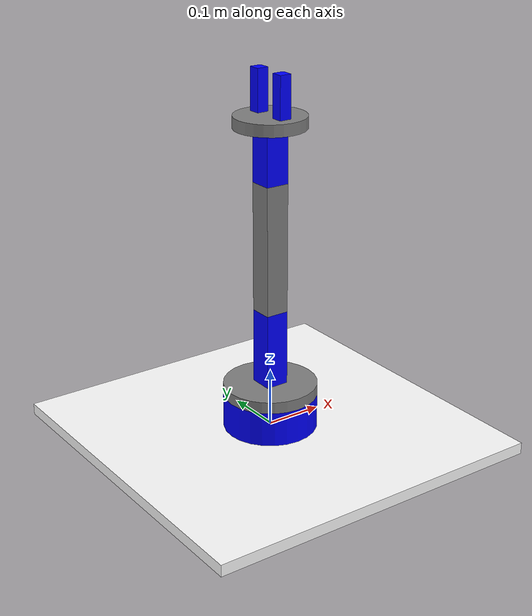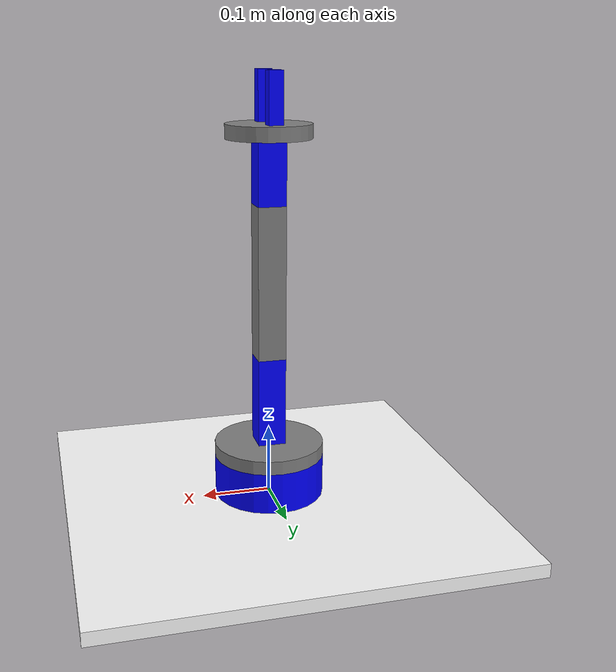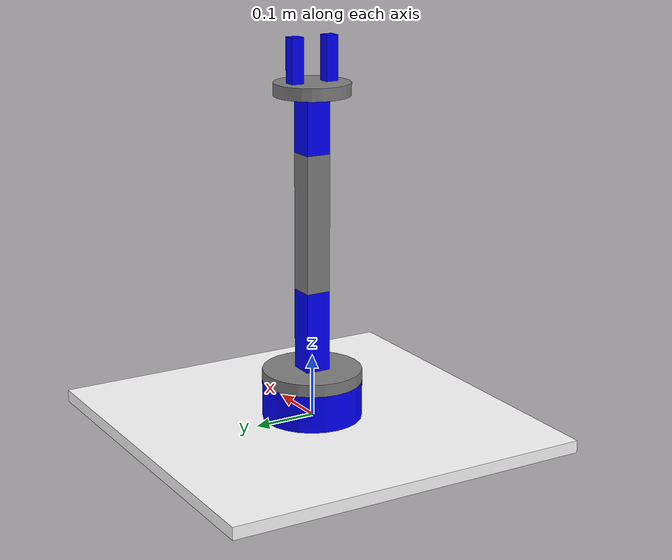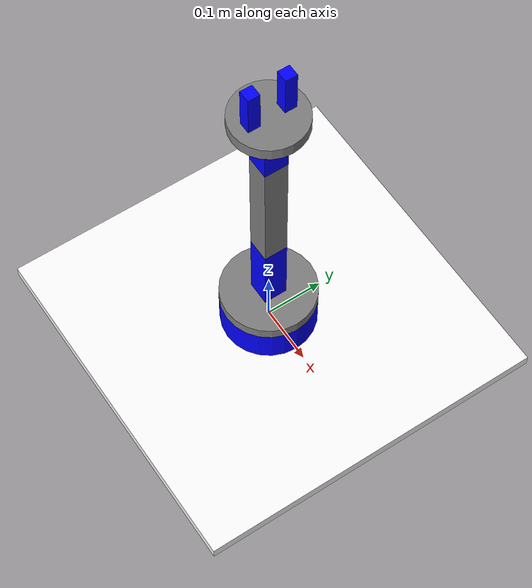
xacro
<?xml version="1.0" ?>

<robot name="BhimBot_five_dof_arm" xmlns:xacro="http://www.ros.org/wiki/xacro">

  <!-- Include materials-->
  <material name="Black">
    <color rgba="0.0 0.0 0.0 1.0" />
  </material>

  <material name="Red">
    <color rgba="0.8 0.0 0.0 1.0" />
  </material>

  <material name="White">
    <color rgba="1.0 1.0 1.0 1.0" />
  </material>

  <material name="Blue">
    <color rgba="0.0 0.0 1.0 1.0"/>
  </material>

  <material name="Grey">
    <color rgba="0.5 0.5 0.5 1.0" />
  </material>

  <!-- Include properties -->
  <property name="M_PI" value="3.14159" />

  <property name="base_width" value="0.08" />
  <property name="base_len" value="0.06" />

  <property name="shoulder_pan_width" value="0.08" />
  <property name="shoulder_pan_len" value="0.02" />

  <property name="shoulder_pitch_len" value="0.14" />
  <property name="shoulder_pitch_width" value="0.04" />
  <property name="shoulder_pitch_height" value="0.04" />

  <property name="elbow_pitch_len" value="0.22" />
  <property name="elbow_pitch_width" value="0.04" />
  <property name="elbow_pitch_height" value="0.04" />

  <property name="wrist_pitch_len" value="0.10" />
  <property name="wrist_pitch_width" value="0.04" />
  <property name="wrist_pitch_height" value="0.04" />

  <property name="wrist_roll_width" value="0.06" />
  <property name="wrist_roll_len" value="0.02" />

  <property name="gripper_finger_len" value="0.08" />
  <property name="gripper_finger_width" value="0.02" />
  <property name="gripper_finger_height" value="0.02" />

  <xacro:macro name="inertial_matrix" params="mass">
    <inertial>
      <mass value="${mass}" />
      <inertia ixx="1.0" ixy="0.0" ixz="0.0" iyy="0.5" iyz="0.0" izz="1.0" />
    </inertial>
  </xacro:macro>

  <xacro:macro name="transmission_block" params="joint_name">
    <transmission name="tran1">
      <type> transmission_interface/SimpleTransmission  </type>

      <joint name="${joint_name}">
        <hardwareInterface> EffortJointInterface </hardwareInterface>
      </joint>

      <actuator name="motor1">
        <hardwareInterface> EfforJointInterface </hardwareInterface>
        <mechanicalReduction> 1  </mechanicalReduction>
      </actuator>
    </transmission>
  </xacro:macro>

  <link name="bottom_link">
    <visual>
      <origin xyz="0 0 -0.01" rpy="0 0 0" />
      <geometry>
        <box size="0.6 0.6 0.02" />
      </geometry>
      <material name="White" />
    </visual>

    <collision>
      <origin xyz="0 0 -0.01" rpy="0 0 0" />
      <geometry>
        <box size="0.6 0.6 0.02" />
      </geometry>
    </collision>

    <xacro:inertial_matrix mass="100" />
  </link>

  <gazebo reference="bottom_link">
    <material> Gazebo/White</material>
  </gazebo>

  <joint name="bottom_joint" type="fixed">
    <parent link="base_link" />
    <child link="bottom_link" />
    <origin xyz="0 0 0" rpy="0 0 0" />
  </joint>

  <link name="base_link">
    <visual>
      <origin xyz="0 0 0.03" rpy="0 0 0" />
      <geometry>
        <cylinder radius="${base_width}" length="${base_len}" />
      </geometry>
      <material name="Blue" />
    </visual>

    <collision>
      <origin xyz="0 0 0.03" rpy="0 0 0" />
      <geometry>
        <cylinder radius="${base_width}" length="${base_len}" />
      </geometry>
    </collision>

    <xacro:inertial_matrix mass="1" />
  </link>

  <gazebo reference="base_link">
    <material> Gazebo/Blue </material>
  </gazebo>

  <joint name="shoulder_pan_joint" type="revolute">
    <parent link="base_link" />
    <child link="shoulder_pan_link" />
    <origin xyz="0 0 0.07" rpy="-${M_PI/2} ${M_PI/2} ${M_PI*0}" />
    <axis xyz="-1 0 0" />
    <limit effort="300" velocity="1" lower="-1.57" upper="1.57" />
    <dynamics damping="50" friction="1" />
  </joint>

  <link name="shoulder_pan_link">
    <visual>
      <origin xyz="0 0 0" rpy="0 ${M_PI/2} 0" />
      <geometry>
        <cylinder radius="${shoulder_pan_width}" length="${shoulder_pan_len}" />
      </geometry>
      <material name="Grey" />
    </visual>

    <collision>
      <origin xyz="0 0 0" rpy="0 ${M_PI/2} 0" />
      <geometry>
        <cylinder radius="${shoulder_pan_width}" length="${shoulder_pan_len}" />
      </geometry>
    </collision>

    <xacro:inertial_matrix mass="1" />
  </link>

  <gazebo reference="shoulder_pan_link">
    <material> Gazebo/Grey</material>
  </gazebo>

  <joint name="shoulder_pitch_joint" type="revolute">
    <parent link="shoulder_pan_link" />
    <child link="shoulder_pitch_link" />
    <origin xyz="0 0 0" rpy="-${M_PI/2} 0 ${M_PI/2}" />
    <axis xyz="0 1 0" />
    <limit effort="300" velocity="1" lower="-1.57" upper="1.57" />
    <dynamics damping="50" friction="1" />
  </joint>

  <link name="shoulder_pitch_link">
    <visual>
      <origin xyz="0 0 0.07" rpy="0 ${M_PI/2} 0" />
      <geometry>
        <box size="${shoulder_pitch_len} ${shoulder_pitch_width} ${shoulder_pitch_height}" />
      </geometry>
      <material name="Blue" />
    </visual>

    <collision>
      <origin xyz="0 0 0.07" rpy="0 ${M_PI/2} 0" />
      <geometry>
        <box size="${shoulder_pitch_len} ${shoulder_pitch_width} ${shoulder_pitch_height}" />
      </geometry>
    </collision>

    <xacro:inertial_matrix mass="1" />
  </link>

  <gazebo reference="shoulder_pitch_link">
    <material> Gazebo/Blue </material>
  </gazebo>

  <joint name="elbow_pitch_joint" type="revolute">
    <parent link="shoulder_pitch_link" />
    <child link="elbow_pitch_link" />
    <origin xyz="0 0 0.14" rpy="0 0 ${M_PI/2}" />
    <axis xyz="1 0 0" />
    <limit effort="300" velocity="1" lower="-1.57" upper="1.57" />
    <dynamics damping="50" friction="1" />
  </joint>

  <link name="elbow_pitch_link">
    <visual>
      <origin xyz="0 0 0.11" rpy="0 ${M_PI/2} 0" />
      <geometry>
        <box size="${elbow_pitch_len} ${elbow_pitch_width} ${elbow_pitch_height}" />
      </geometry>
      <material name="Grey" />
    </visual>

    <collision>
      <origin xyz="0 0 0.11" rpy="0 ${M_PI/2} 0" />
      <geometry>
        <box size="${elbow_pitch_len} ${elbow_pitch_width} ${elbow_pitch_height}" />
      </geometry>
    </collision>

    <xacro:inertial_matrix mass="1" />
  </link>

  <gazebo reference="elbow_pitch_link">
    <material> Gazebo/Grey </material>
  </gazebo>

  <joint name="wrist_pitch_joint" type="revolute">
    <parent link="elbow_pitch_link" />
    <child link="wrist_pitch_link" />
    <origin xyz="0 0 0.22" rpy="0 0 0" />
    <axis xyz="1 0 0" />
    <limit effort="300" velocity="1" lower="-1.57" upper="1.57" />
    <dynamics damping="50" friction="1" />
  </joint>

  <link name="wrist_pitch_link">
    <visual>
      <origin xyz="0 0 0.05" rpy="0 ${M_PI/2} 0" />
      <geometry>
        <box size="${wrist_pitch_len} ${wrist_pitch_width} ${wrist_pitch_height}" />
      </geometry>
      <material name="Blue" />
    </visual>

    <collision>
      <origin xyz="0 0 0.05" rpy="0 ${M_PI/2} 0" />
      <geometry>
        <box size="${wrist_pitch_len} ${wrist_pitch_width} ${wrist_pitch_height}" />
      </geometry>
    </collision>

    <xacro:inertial_matrix mass="1" />
  </link>

  <gazebo reference="wrist_pitch_link">
    <material> Gazebo/Blue </material>
  </gazebo>

  <joint name="wrist_roll_joint" type="revolute">
    <parent link="wrist_pitch_link" />
    <child link="wrist_roll_link"/>
    <origin xyz="0 0 0.10" rpy="-${M_PI/2} ${M_PI/2} 0" />
    <axis xyz="1 0 0" />
    <limit effort="300" velocity="1" lower="-1.57" upper="1.57" />
    <dynamics damping="50" friction="1" />
  </joint>

  <link name="wrist_roll_link">
    <visual>
      <origin xyz="0 0 0" rpy="0 ${M_PI/2} 0"/>
      <geometry>
        <cylinder radius="${wrist_roll_width}" length="${wrist_roll_len}" />
      </geometry>
      <material name="Grey" />
    </visual>

    <collision>
      <origin xyz="0 0 0" rpy="0 ${M_PI/2} 0"/>
      <geometry>
        <cylinder radius="${wrist_roll_width}" length="${wrist_roll_len}" />
      </geometry>
    </collision>

    <xacro:inertial_matrix mass="1" />
  </link>

  <gazebo reference="wrist_roll_link">
    <material> Gazebo/Grey </material>
  </gazebo>

  <joint name="gripper_left_finger_joint" type="prismatic">
    <parent link="wrist_roll_link" />
    <child link="gripper_left_finger_link" />
    <origin xyz="0 0 0" />
    <axis xyz="0 1 0" />
    <limit effort="100" velocity="1" lower="0" upper="0.05" />
    <dynamics damping="50" friction="1" />
  </joint>

  <link name="gripper_left_finger_link">
    <visual>
      <origin xyz="-0.04 -0.03 0" />
      <geometry>
        <box size="${gripper_finger_len} ${gripper_finger_width} ${gripper_finger_height}" />
      </geometry>
      <material name="Blue" />
    </visual>

    <collision>
      <origin xyz="-0.04 -0.03 0" />
      <geometry>
        <box size="${gripper_finger_len} ${gripper_finger_width} ${gripper_finger_height}" />
      </geometry>
    </collision>

    <xacro:inertial_matrix mass="1" />
  </link>

  <gazebo reference="gripper_left_finger_link">
    <material> Gazebo/Blue </material>
  </gazebo>

  <joint name="gripper_right_finger_joint" type="fixed">
    <parent link="wrist_roll_link" />
    <child link="gripper_right_finger_link" />
    <origin xyz="0 0 0" />
    <axis xyz="0 1 0" />
  </joint>

  <link name="gripper_right_finger_link">
    <visual>
      <origin xyz="-0.04 0.03 0" />
      <geometry>
        <box size="${gripper_finger_len} ${gripper_finger_width} ${gripper_finger_height}" />
      </geometry>
      <material name="Blue" />
    </visual>

    <collision>
      <origin xyz="-0.04 0.03 0" />
      <geometry>
        <box size="${gripper_finger_len} ${gripper_finger_width} ${gripper_finger_height}" />
      </geometry>
    </collision>

    <xacro:inertial_matrix mass="1" />
  </link>

  <gazebo reference="gripper_right_finger_link">
    <material> Gazebo/Blue </material>
  </gazebo>

  <!-- Transmissions for ros_control -->
  <xacro:transmission_block joint_name="shoulder_pan_joint" />
  <xacro:transmission_block joint_name="shoulder_pitch_joint" />
  <xacro:transmission_block joint_name="elbow_pitch_joint" />
  <xacro:transmission_block joint_name="wrist_pitch_joint" />
  <xacro:transmission_block joint_name="wrist_roll_joint" />
  <xacro:transmission_block joint_name="gripper_left_finger_joint" />

  <!-- Gazebo ros_control plugin-->
  <gazebo>
    <plugin name="gazebo_ros_control" filename="libgazebo_ros_control.so">
     <robotNamespace> /bhimbot </robotNamespace>
     <robotSimType> gazebo_ros_control/DefaultRobotHWSim </robotSimType>
    </plugin>
  </gazebo>

</robot>
